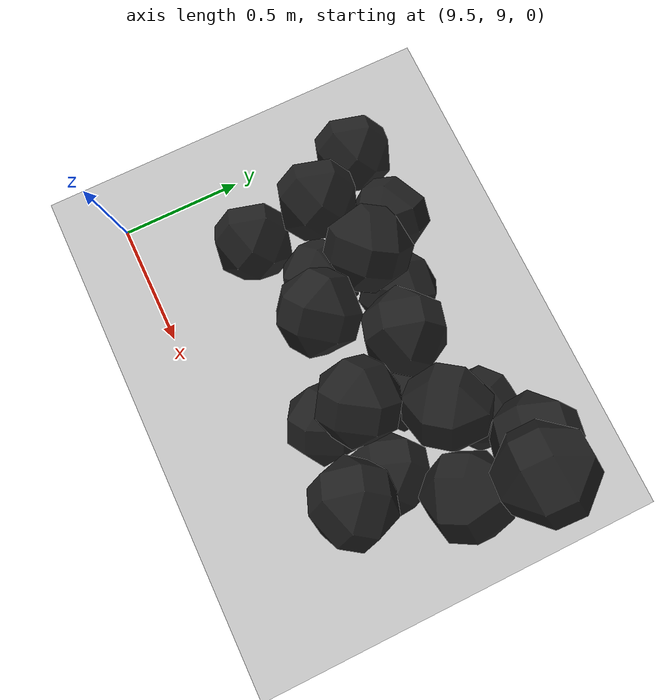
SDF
<sdf version="1.7">
 <world name="default">
  <model name="ground_plane">
   <static>1</static>
   <link name="link">
    <collision name="collision">
     <geometry><plane><normal>0 0 1</normal><size>100 100</size></plane></geometry>
     <surface><friction><ode><mu>100</mu><mu2>50</mu2></ode></friction></surface>
    </collision>
    <visual name="visual">
     <cast_shadows>0</cast_shadows>
     <geometry><plane><normal>0 0 1</normal><size>100 100</size></plane></geometry>
     <material>
      <script><uri>file://media/materials/scripts/gazebo.material</uri><name>Gazebo/Grey</name></script>
     </material>
    </visual>
   </link>
  </model>
  <model name="haoduomiantiaa_3">
   <link name="link_0">
    <inertial>
     <mass>0.2</mass>
     <inertia>
      <ixx>0.166667</ixx>
      <ixy>0</ixy>
      <ixz>0</ixz>
      <iyy>0.166667</iyy>
      <iyz>0</iyz>
      <izz>0.166667</izz>
     </inertia>
    </inertial>
    <visual name="visual">
     <geometry>
      <mesh>
       <uri>/home/lihaoyang/catkin_ws/src/pudong_gazebo/world/stl/haoduomianti.stl</uri>
       <scale>1 1 1</scale>
      </mesh>
     </geometry>
     <material>
      <lighting>1</lighting>
      <script><uri>file://media/materials/scripts/gazebo.material</uri><name>Gazebo/Black</name></script>
      <shader type="pixel"><normal_map>__default__</normal_map></shader>
      <ambient>0.3 0.3 0.3 1</ambient>
      <diffuse>0.7 0.7 0.7 1</diffuse>
      <specular>0.01 0.01 0.01 1</specular>
      <emissive>0 0 0 1</emissive>
     </material>
    </visual>
    <collision name="collision">
     <geometry>
      <mesh>
       <uri>/home/lihaoyang/catkin_ws/src/pudong_gazebo/world/stl/haoduomianti.stl</uri>
       <scale>1 1 1</scale>
      </mesh>
     </geometry>
     <surface>
      <friction>
       <ode><mu>1</mu><mu2>1</mu2><fdir1>0 0 0</fdir1><slip1>0</slip1><slip2>0</slip2></ode>
       <torsional>
        <coefficient>1</coefficient>
        <patch_radius>0</patch_radius>
        <surface_radius>0</surface_radius>
        <use_patch_radius>1</use_patch_radius>
        <ode><slip>0</slip></ode>
       </torsional>
      </friction>
      <bounce><restitution_coefficient>0</restitution_coefficient><threshold>1e+06</threshold></bounce>
      <contact>
       <collide_without_contact>0</collide_without_contact>
       <collide_without_contact_bitmask>1</collide_without_contact_bitmask>
       <collide_bitmask>1</collide_bitmask>
       <ode>
        <soft_cfm>0</soft_cfm>
        <soft_erp>0.2</soft_erp>
        <kp>1e+13</kp>
        <kd>1</kd>
        <max_vel>0.01</max_vel>
        <min_depth>0</min_depth>
       </ode>
       <bullet>
        <split_impulse>1</split_impulse>
        <split_impulse_penetration_threshold>-0.01</split_impulse_penetration_threshold>
        <soft_cfm>0</soft_cfm>
        <soft_erp>0.2</soft_erp>
        <kp>1e+13</kp>
        <kd>1</kd>
       </bullet>
      </contact>
     </surface>
    </collision>
   </link>
   <static>0</static>
   <pose>10.3504 9.84955 0.129678 0.425469 -0.641016 -2.14379</pose>
  </model>
  <model name="haoduomiantiaa_24">
   <link name="link_0">
    <inertial>
     <mass>0.2</mass>
     <inertia>
      <ixx>0.166667</ixx>
      <ixy>0</ixy>
      <ixz>0</ixz>
      <iyy>0.166667</iyy>
      <iyz>0</iyz>
      <izz>0.166667</izz>
     </inertia>
    </inertial>
    <visual name="visual">
     <geometry>
      <mesh>
       <uri>/home/lihaoyang/catkin_ws/src/pudong_gazebo/world/stl/haoduomianti.stl</uri>
       <scale>1 1 1</scale>
      </mesh>
     </geometry>
     <material>
      <lighting>1</lighting>
      <script><uri>file://media/materials/scripts/gazebo.material</uri><name>Gazebo/Black</name></script>
      <shader type="pixel"><normal_map>__default__</normal_map></shader>
      <ambient>0.3 0.3 0.3 1</ambient>
      <diffuse>0.7 0.7 0.7 1</diffuse>
      <specular>0.01 0.01 0.01 1</specular>
      <emissive>0 0 0 1</emissive>
     </material>
    </visual>
    <collision name="collision">
     <geometry>
      <mesh>
       <uri>/home/lihaoyang/catkin_ws/src/pudong_gazebo/world/stl/haoduomianti.stl</uri>
       <scale>1 1 1</scale>
      </mesh>
     </geometry>
     <surface>
      <friction>
       <ode><mu>1</mu><mu2>1</mu2><fdir1>0 0 0</fdir1><slip1>0</slip1><slip2>0</slip2></ode>
       <torsional>
        <coefficient>1</coefficient>
        <patch_radius>0</patch_radius>
        <surface_radius>0</surface_radius>
        <use_patch_radius>1</use_patch_radius>
        <ode><slip>0</slip></ode>
       </torsional>
      </friction>
      <bounce><restitution_coefficient>0</restitution_coefficient><threshold>1e+06</threshold></bounce>
      <contact>
       <collide_without_contact>0</collide_without_contact>
       <collide_without_contact_bitmask>1</collide_without_contact_bitmask>
       <collide_bitmask>1</collide_bitmask>
       <ode>
        <soft_cfm>0</soft_cfm>
        <soft_erp>0.2</soft_erp>
        <kp>1e+13</kp>
        <kd>1</kd>
        <max_vel>0.01</max_vel>
        <min_depth>0</min_depth>
       </ode>
       <bullet>
        <split_impulse>1</split_impulse>
        <split_impulse_penetration_threshold>-0.01</split_impulse_penetration_threshold>
        <soft_cfm>0</soft_cfm>
        <soft_erp>0.2</soft_erp>
        <kp>1e+13</kp>
        <kd>1</kd>
       </bullet>
      </contact>
     </surface>
    </collision>
   </link>
   <static>0</static>
   <pose>10.9189 10.0612 0.142592 0.867457 -0.695063 1.70871</pose>
  </model>
  <model name="haoduomiantiaa_34">
   <link name="link_0">
    <inertial>
     <mass>0.2</mass>
     <inertia>
      <ixx>0.166667</ixx>
      <ixy>0</ixy>
      <ixz>0</ixz>
      <iyy>0.166667</iyy>
      <iyz>0</iyz>
      <izz>0.166667</izz>
     </inertia>
    </inertial>
    <visual name="visual">
     <geometry>
      <mesh>
       <uri>/home/lihaoyang/catkin_ws/src/pudong_gazebo/world/stl/haoduomianti.stl</uri>
       <scale>1 1 1</scale>
      </mesh>
     </geometry>
     <material>
      <lighting>1</lighting>
      <script><uri>file://media/materials/scripts/gazebo.material</uri><name>Gazebo/Black</name></script>
      <shader type="pixel"><normal_map>__default__</normal_map></shader>
      <ambient>0.3 0.3 0.3 1</ambient>
      <diffuse>0.7 0.7 0.7 1</diffuse>
      <specular>0.01 0.01 0.01 1</specular>
      <emissive>0 0 0 1</emissive>
     </material>
    </visual>
    <collision name="collision">
     <geometry>
      <mesh>
       <uri>/home/lihaoyang/catkin_ws/src/pudong_gazebo/world/stl/haoduomianti.stl</uri>
       <scale>1 1 1</scale>
      </mesh>
     </geometry>
     <surface>
      <friction>
       <ode><mu>1</mu><mu2>1</mu2><fdir1>0 0 0</fdir1><slip1>0</slip1><slip2>0</slip2></ode>
       <torsional>
        <coefficient>1</coefficient>
        <patch_radius>0</patch_radius>
        <surface_radius>0</surface_radius>
        <use_patch_radius>1</use_patch_radius>
        <ode><slip>0</slip></ode>
       </torsional>
      </friction>
      <bounce><restitution_coefficient>0</restitution_coefficient><threshold>1e+06</threshold></bounce>
      <contact>
       <collide_without_contact>0</collide_without_contact>
       <collide_without_contact_bitmask>1</collide_without_contact_bitmask>
       <collide_bitmask>1</collide_bitmask>
       <ode>
        <soft_cfm>0</soft_cfm>
        <soft_erp>0.2</soft_erp>
        <kp>1e+13</kp>
        <kd>1</kd>
        <max_vel>0.01</max_vel>
        <min_depth>0</min_depth>
       </ode>
       <bullet>
        <split_impulse>1</split_impulse>
        <split_impulse_penetration_threshold>-0.01</split_impulse_penetration_threshold>
        <soft_cfm>0</soft_cfm>
        <soft_erp>0.2</soft_erp>
        <kp>1e+13</kp>
        <kd>1</kd>
       </bullet>
      </contact>
     </surface>
    </collision>
   </link>
   <static>0</static>
   <pose>10.6131 9.75065 -0.109493 0.925221 -0.673977 -0.450165</pose>
  </model>
  <model name="haoduomiantiaa_37">
   <link name="link_0">
    <inertial>
     <mass>0.2</mass>
     <inertia>
      <ixx>0.166667</ixx>
      <ixy>0</ixy>
      <ixz>0</ixz>
      <iyy>0.166667</iyy>
      <iyz>0</iyz>
      <izz>0.166667</izz>
     </inertia>
    </inertial>
    <visual name="visual">
     <geometry>
      <mesh>
       <uri>/home/lihaoyang/catkin_ws/src/pudong_gazebo/world/stl/haoduomianti.stl</uri>
       <scale>1 1 1</scale>
      </mesh>
     </geometry>
     <material>
      <lighting>1</lighting>
      <script><uri>file://media/materials/scripts/gazebo.material</uri><name>Gazebo/Black</name></script>
      <shader type="pixel"><normal_map>__default__</normal_map></shader>
      <ambient>0.3 0.3 0.3 1</ambient>
      <diffuse>0.7 0.7 0.7 1</diffuse>
      <specular>0.01 0.01 0.01 1</specular>
      <emissive>0 0 0 1</emissive>
     </material>
    </visual>
    <collision name="collision">
     <geometry>
      <mesh>
       <uri>/home/lihaoyang/catkin_ws/src/pudong_gazebo/world/stl/haoduomianti.stl</uri>
       <scale>1 1 1</scale>
      </mesh>
     </geometry>
     <surface>
      <friction>
       <ode><mu>1</mu><mu2>1</mu2><fdir1>0 0 0</fdir1><slip1>0</slip1><slip2>0</slip2></ode>
       <torsional>
        <coefficient>1</coefficient>
        <patch_radius>0</patch_radius>
        <surface_radius>0</surface_radius>
        <use_patch_radius>1</use_patch_radius>
        <ode><slip>0</slip></ode>
       </torsional>
      </friction>
      <bounce><restitution_coefficient>0</restitution_coefficient><threshold>1e+06</threshold></bounce>
      <contact>
       <collide_without_contact>0</collide_without_contact>
       <collide_without_contact_bitmask>1</collide_without_contact_bitmask>
       <collide_bitmask>1</collide_bitmask>
       <ode>
        <soft_cfm>0</soft_cfm>
        <soft_erp>0.2</soft_erp>
        <kp>1e+13</kp>
        <kd>1</kd>
        <max_vel>0.01</max_vel>
        <min_depth>0</min_depth>
       </ode>
       <bullet>
        <split_impulse>1</split_impulse>
        <split_impulse_penetration_threshold>-0.01</split_impulse_penetration_threshold>
        <soft_cfm>0</soft_cfm>
        <soft_erp>0.2</soft_erp>
        <kp>1e+13</kp>
        <kd>1</kd>
       </bullet>
      </contact>
     </surface>
    </collision>
   </link>
   <static>0</static>
   <pose>9.65128 9.97883 -0.115407 0.784264 -0.615368 1.83545</pose>
  </model>
  <model name="haoduomiantiaa_42">
   <link name="link_0">
    <inertial>
     <mass>0.2</mass>
     <inertia>
      <ixx>0.166667</ixx>
      <ixy>0</ixy>
      <ixz>0</ixz>
      <iyy>0.166667</iyy>
      <iyz>0</iyz>
      <izz>0.166667</izz>
     </inertia>
    </inertial>
    <visual name="visual">
     <geometry>
      <mesh>
       <uri>/home/lihaoyang/catkin_ws/src/pudong_gazebo/world/stl/haoduomianti.stl</uri>
       <scale>1 1 1</scale>
      </mesh>
     </geometry>
     <material>
      <lighting>1</lighting>
      <script><uri>file://media/materials/scripts/gazebo.material</uri><name>Gazebo/Black</name></script>
      <shader type="pixel"><normal_map>__default__</normal_map></shader>
      <ambient>0.3 0.3 0.3 1</ambient>
      <diffuse>0.7 0.7 0.7 1</diffuse>
      <specular>0.01 0.01 0.01 1</specular>
      <emissive>0 0 0 1</emissive>
     </material>
    </visual>
    <collision name="collision">
     <geometry>
      <mesh>
       <uri>/home/lihaoyang/catkin_ws/src/pudong_gazebo/world/stl/haoduomianti.stl</uri>
       <scale>1 1 1</scale>
      </mesh>
     </geometry>
     <surface>
      <friction>
       <ode><mu>1</mu><mu2>1</mu2><fdir1>0 0 0</fdir1><slip1>0</slip1><slip2>0</slip2></ode>
       <torsional>
        <coefficient>1</coefficient>
        <patch_radius>0</patch_radius>
        <surface_radius>0</surface_radius>
        <use_patch_radius>1</use_patch_radius>
        <ode><slip>0</slip></ode>
       </torsional>
      </friction>
      <bounce><restitution_coefficient>0</restitution_coefficient><threshold>1e+06</threshold></bounce>
      <contact>
       <collide_without_contact>0</collide_without_contact>
       <collide_without_contact_bitmask>1</collide_without_contact_bitmask>
       <collide_bitmask>1</collide_bitmask>
       <ode>
        <soft_cfm>0</soft_cfm>
        <soft_erp>0.2</soft_erp>
        <kp>1e+13</kp>
        <kd>1</kd>
        <max_vel>0.01</max_vel>
        <min_depth>0</min_depth>
       </ode>
       <bullet>
        <split_impulse>1</split_impulse>
        <split_impulse_penetration_threshold>-0.01</split_impulse_penetration_threshold>
        <soft_cfm>0</soft_cfm>
        <soft_erp>0.2</soft_erp>
        <kp>1e+13</kp>
        <kd>1</kd>
       </bullet>
      </contact>
     </surface>
    </collision>
   </link>
   <static>0</static>
   <pose>9.95244 9.99674 -0.115051 0.786641 -0.61753 0.973954</pose>
  </model>
  <model name="haoduomiantiaa_68">
   <link name="link_0">
    <inertial>
     <mass>0.2</mass>
     <inertia>
      <ixx>0.166667</ixx>
      <ixy>0</ixy>
      <ixz>0</ixz>
      <iyy>0.166667</iyy>
      <iyz>0</iyz>
      <izz>0.166667</izz>
     </inertia>
    </inertial>
    <visual name="visual">
     <geometry>
      <mesh>
       <uri>/home/lihaoyang/catkin_ws/src/pudong_gazebo/world/stl/haoduomianti.stl</uri>
       <scale>1 1 1</scale>
      </mesh>
     </geometry>
     <material>
      <lighting>1</lighting>
      <script><uri>file://media/materials/scripts/gazebo.material</uri><name>Gazebo/Black</name></script>
      <shader type="pixel"><normal_map>__default__</normal_map></shader>
      <ambient>0.3 0.3 0.3 1</ambient>
      <diffuse>0.7 0.7 0.7 1</diffuse>
      <specular>0.01 0.01 0.01 1</specular>
      <emissive>0 0 0 1</emissive>
     </material>
    </visual>
    <collision name="collision">
     <geometry>
      <mesh>
       <uri>/home/lihaoyang/catkin_ws/src/pudong_gazebo/world/stl/haoduomianti.stl</uri>
       <scale>1 1 1</scale>
      </mesh>
     </geometry>
     <surface>
      <friction>
       <ode><mu>1</mu><mu2>1</mu2><fdir1>0 0 0</fdir1><slip1>0</slip1><slip2>0</slip2></ode>
       <torsional>
        <coefficient>1</coefficient>
        <patch_radius>0</patch_radius>
        <surface_radius>0</surface_radius>
        <use_patch_radius>1</use_patch_radius>
        <ode><slip>0</slip></ode>
       </torsional>
      </friction>
      <bounce><restitution_coefficient>0</restitution_coefficient><threshold>1e+06</threshold></bounce>
      <contact>
       <collide_without_contact>0</collide_without_contact>
       <collide_without_contact_bitmask>1</collide_without_contact_bitmask>
       <collide_bitmask>1</collide_bitmask>
       <ode>
        <soft_cfm>0</soft_cfm>
        <soft_erp>0.2</soft_erp>
        <kp>1e+13</kp>
        <kd>1</kd>
        <max_vel>0.01</max_vel>
        <min_depth>0</min_depth>
       </ode>
       <bullet>
        <split_impulse>1</split_impulse>
        <split_impulse_penetration_threshold>-0.01</split_impulse_penetration_threshold>
        <soft_cfm>0</soft_cfm>
        <soft_erp>0.2</soft_erp>
        <kp>1e+13</kp>
        <kd>1</kd>
       </bullet>
      </contact>
     </surface>
    </collision>
   </link>
   <static>0</static>
   <pose>10.9958 9.73965 0.179232 0.749472 -0.609533 -0.892031</pose>
  </model>
  <model name="haoduomiantiaa_69">
   <link name="link_0">
    <inertial>
     <mass>0.2</mass>
     <inertia>
      <ixx>0.166667</ixx>
      <ixy>0</ixy>
      <ixz>0</ixz>
      <iyy>0.166667</iyy>
      <iyz>0</iyz>
      <izz>0.166667</izz>
     </inertia>
    </inertial>
    <visual name="visual">
     <geometry>
      <mesh>
       <uri>/home/lihaoyang/catkin_ws/src/pudong_gazebo/world/stl/haoduomianti.stl</uri>
       <scale>1 1 1</scale>
      </mesh>
     </geometry>
     <material>
      <lighting>1</lighting>
      <script><uri>file://media/materials/scripts/gazebo.material</uri><name>Gazebo/Black</name></script>
      <shader type="pixel"><normal_map>__default__</normal_map></shader>
      <ambient>0.3 0.3 0.3 1</ambient>
      <diffuse>0.7 0.7 0.7 1</diffuse>
      <specular>0.01 0.01 0.01 1</specular>
      <emissive>0 0 0 1</emissive>
     </material>
    </visual>
    <collision name="collision">
     <geometry>
      <mesh>
       <uri>/home/lihaoyang/catkin_ws/src/pudong_gazebo/world/stl/haoduomianti.stl</uri>
       <scale>1 1 1</scale>
      </mesh>
     </geometry>
     <surface>
      <friction>
       <ode><mu>1</mu><mu2>1</mu2><fdir1>0 0 0</fdir1><slip1>0</slip1><slip2>0</slip2></ode>
       <torsional>
        <coefficient>1</coefficient>
        <patch_radius>0</patch_radius>
        <surface_radius>0</surface_radius>
        <use_patch_radius>1</use_patch_radius>
        <ode><slip>0</slip></ode>
       </torsional>
      </friction>
      <bounce><restitution_coefficient>0</restitution_coefficient><threshold>1e+06</threshold></bounce>
      <contact>
       <collide_without_contact>0</collide_without_contact>
       <collide_without_contact_bitmask>1</collide_without_contact_bitmask>
       <collide_bitmask>1</collide_bitmask>
       <ode>
        <soft_cfm>0</soft_cfm>
        <soft_erp>0.2</soft_erp>
        <kp>1e+13</kp>
        <kd>1</kd>
        <max_vel>0.01</max_vel>
        <min_depth>0</min_depth>
       </ode>
       <bullet>
        <split_impulse>1</split_impulse>
        <split_impulse_penetration_threshold>-0.01</split_impulse_penetration_threshold>
        <soft_cfm>0</soft_cfm>
        <soft_erp>0.2</soft_erp>
        <kp>1e+13</kp>
        <kd>1</kd>
       </bullet>
      </contact>
     </surface>
    </collision>
   </link>
   <static>0</static>
   <pose>10.1433 9.87198 0.13513 0.918311 -0.360982 -2.0153</pose>
  </model>
  <model name="haoduomiantiaa_70">
   <link name="link_0">
    <inertial>
     <mass>0.2</mass>
     <inertia>
      <ixx>0.166667</ixx>
      <ixy>0</ixy>
      <ixz>0</ixz>
      <iyy>0.166667</iyy>
      <iyz>0</iyz>
      <izz>0.166667</izz>
     </inertia>
    </inertial>
    <visual name="visual">
     <geometry>
      <mesh>
       <uri>/home/lihaoyang/catkin_ws/src/pudong_gazebo/world/stl/haoduomianti.stl</uri>
       <scale>1 1 1</scale>
      </mesh>
     </geometry>
     <material>
      <lighting>1</lighting>
      <script><uri>file://media/materials/scripts/gazebo.material</uri><name>Gazebo/Black</name></script>
      <shader type="pixel"><normal_map>__default__</normal_map></shader>
      <ambient>0.3 0.3 0.3 1</ambient>
      <diffuse>0.7 0.7 0.7 1</diffuse>
      <specular>0.01 0.01 0.01 1</specular>
      <emissive>0 0 0 1</emissive>
     </material>
    </visual>
    <collision name="collision">
     <geometry>
      <mesh>
       <uri>/home/lihaoyang/catkin_ws/src/pudong_gazebo/world/stl/haoduomianti.stl</uri>
       <scale>1 1 1</scale>
      </mesh>
     </geometry>
     <surface>
      <friction>
       <ode><mu>1</mu><mu2>1</mu2><fdir1>0 0 0</fdir1><slip1>0</slip1><slip2>0</slip2></ode>
       <torsional>
        <coefficient>1</coefficient>
        <patch_radius>0</patch_radius>
        <surface_radius>0</surface_radius>
        <use_patch_radius>1</use_patch_radius>
        <ode><slip>0</slip></ode>
       </torsional>
      </friction>
      <bounce><restitution_coefficient>0</restitution_coefficient><threshold>1e+06</threshold></bounce>
      <contact>
       <collide_without_contact>0</collide_without_contact>
       <collide_without_contact_bitmask>1</collide_without_contact_bitmask>
       <collide_bitmask>1</collide_bitmask>
       <ode>
        <soft_cfm>0</soft_cfm>
        <soft_erp>0.2</soft_erp>
        <kp>1e+13</kp>
        <kd>1</kd>
        <max_vel>0.01</max_vel>
        <min_depth>0</min_depth>
       </ode>
       <bullet>
        <split_impulse>1</split_impulse>
        <split_impulse_penetration_threshold>-0.01</split_impulse_penetration_threshold>
        <soft_cfm>0</soft_cfm>
        <soft_erp>0.2</soft_erp>
        <kp>1e+13</kp>
        <kd>1</kd>
       </bullet>
      </contact>
     </surface>
    </collision>
   </link>
   <static>0</static>
   <pose>10.5907 9.52528 0.145953 0.621742 -0.648387 0.575842</pose>
  </model>
  <model name="haoduomiantiaa_72">
   <link name="link_0">
    <inertial>
     <mass>0.2</mass>
     <inertia>
      <ixx>0.166667</ixx>
      <ixy>0</ixy>
      <ixz>0</ixz>
      <iyy>0.166667</iyy>
      <iyz>0</iyz>
      <izz>0.166667</izz>
     </inertia>
    </inertial>
    <visual name="visual">
     <geometry>
      <mesh>
       <uri>/home/lihaoyang/catkin_ws/src/pudong_gazebo/world/stl/haoduomianti.stl</uri>
       <scale>1 1 1</scale>
      </mesh>
     </geometry>
     <material>
      <lighting>1</lighting>
      <script><uri>file://media/materials/scripts/gazebo.material</uri><name>Gazebo/Black</name></script>
      <shader type="pixel"><normal_map>__default__</normal_map></shader>
      <ambient>0.3 0.3 0.3 1</ambient>
      <diffuse>0.7 0.7 0.7 1</diffuse>
      <specular>0.01 0.01 0.01 1</specular>
      <emissive>0 0 0 1</emissive>
     </material>
    </visual>
    <collision name="collision">
     <geometry>
      <mesh>
       <uri>/home/lihaoyang/catkin_ws/src/pudong_gazebo/world/stl/haoduomianti.stl</uri>
       <scale>1 1 1</scale>
      </mesh>
     </geometry>
     <surface>
      <friction>
       <ode><mu>1</mu><mu2>1</mu2><fdir1>0 0 0</fdir1><slip1>0</slip1><slip2>0</slip2></ode>
       <torsional>
        <coefficient>1</coefficient>
        <patch_radius>0</patch_radius>
        <surface_radius>0</surface_radius>
        <use_patch_radius>1</use_patch_radius>
        <ode><slip>0</slip></ode>
       </torsional>
      </friction>
      <bounce><restitution_coefficient>0</restitution_coefficient><threshold>1e+06</threshold></bounce>
      <contact>
       <collide_without_contact>0</collide_without_contact>
       <collide_without_contact_bitmask>1</collide_without_contact_bitmask>
       <collide_bitmask>1</collide_bitmask>
       <ode>
        <soft_cfm>0</soft_cfm>
        <soft_erp>0.2</soft_erp>
        <kp>1e+13</kp>
        <kd>1</kd>
        <max_vel>0.01</max_vel>
        <min_depth>0</min_depth>
       </ode>
       <bullet>
        <split_impulse>1</split_impulse>
        <split_impulse_penetration_threshold>-0.01</split_impulse_penetration_threshold>
        <soft_cfm>0</soft_cfm>
        <soft_erp>0.2</soft_erp>
        <kp>1e+13</kp>
        <kd>1</kd>
       </bullet>
      </contact>
     </surface>
    </collision>
   </link>
   <static>0</static>
   <pose>9.81293 9.73438 0.013283 0.782444 -0.551953 1.84415</pose>
  </model>
  <model name="haoduomiantiaa_73">
   <link name="link_0">
    <inertial>
     <mass>0.2</mass>
     <inertia>
      <ixx>0.166667</ixx>
      <ixy>0</ixy>
      <ixz>0</ixz>
      <iyy>0.166667</iyy>
      <iyz>0</iyz>
      <izz>0.166667</izz>
     </inertia>
    </inertial>
    <visual name="visual">
     <geometry>
      <mesh>
       <uri>/home/lihaoyang/catkin_ws/src/pudong_gazebo/world/stl/haoduomianti.stl</uri>
       <scale>1 1 1</scale>
      </mesh>
     </geometry>
     <material>
      <lighting>1</lighting>
      <script><uri>file://media/materials/scripts/gazebo.material</uri><name>Gazebo/Black</name></script>
      <shader type="pixel"><normal_map>__default__</normal_map></shader>
      <ambient>0.3 0.3 0.3 1</ambient>
      <diffuse>0.7 0.7 0.7 1</diffuse>
      <specular>0.01 0.01 0.01 1</specular>
      <emissive>0 0 0 1</emissive>
     </material>
    </visual>
    <collision name="collision">
     <geometry>
      <mesh>
       <uri>/home/lihaoyang/catkin_ws/src/pudong_gazebo/world/stl/haoduomianti.stl</uri>
       <scale>1 1 1</scale>
      </mesh>
     </geometry>
     <surface>
      <friction>
       <ode><mu>1</mu><mu2>1</mu2><fdir1>0 0 0</fdir1><slip1>0</slip1><slip2>0</slip2></ode>
       <torsional>
        <coefficient>1</coefficient>
        <patch_radius>0</patch_radius>
        <surface_radius>0</surface_radius>
        <use_patch_radius>1</use_patch_radius>
        <ode><slip>0</slip></ode>
       </torsional>
      </friction>
      <bounce><restitution_coefficient>0</restitution_coefficient><threshold>1e+06</threshold></bounce>
      <contact>
       <collide_without_contact>0</collide_without_contact>
       <collide_without_contact_bitmask>1</collide_without_contact_bitmask>
       <collide_bitmask>1</collide_bitmask>
       <ode>
        <soft_cfm>0</soft_cfm>
        <soft_erp>0.2</soft_erp>
        <kp>1e+13</kp>
        <kd>1</kd>
        <max_vel>0.01</max_vel>
        <min_depth>0</min_depth>
       </ode>
       <bullet>
        <split_impulse>1</split_impulse>
        <split_impulse_penetration_threshold>-0.01</split_impulse_penetration_threshold>
        <soft_cfm>0</soft_cfm>
        <soft_erp>0.2</soft_erp>
        <kp>1e+13</kp>
        <kd>1</kd>
       </bullet>
      </contact>
     </surface>
    </collision>
   </link>
   <static>0</static>
   <pose>10.0662 9.63802 -0.115669 0.785381 -0.612157 2.80376</pose>
  </model>
  <model name="haoduomiantiaa_81">
   <link name="link_0">
    <inertial>
     <mass>0.2</mass>
     <inertia>
      <ixx>0.166667</ixx>
      <ixy>0</ixy>
      <ixz>0</ixz>
      <iyy>0.166667</iyy>
      <iyz>0</iyz>
      <izz>0.166667</izz>
     </inertia>
    </inertial>
    <visual name="visual">
     <geometry>
      <mesh>
       <uri>/home/lihaoyang/catkin_ws/src/pudong_gazebo/world/stl/haoduomianti.stl</uri>
       <scale>1 1 1</scale>
      </mesh>
     </geometry>
     <material>
      <lighting>1</lighting>
      <script><uri>file://media/materials/scripts/gazebo.material</uri><name>Gazebo/Black</name></script>
      <shader type="pixel"><normal_map>__default__</normal_map></shader>
      <ambient>0.3 0.3 0.3 1</ambient>
      <diffuse>0.7 0.7 0.7 1</diffuse>
      <specular>0.01 0.01 0.01 1</specular>
      <emissive>0 0 0 1</emissive>
     </material>
    </visual>
    <collision name="collision">
     <geometry>
      <mesh>
       <uri>/home/lihaoyang/catkin_ws/src/pudong_gazebo/world/stl/haoduomianti.stl</uri>
       <scale>1 1 1</scale>
      </mesh>
     </geometry>
     <surface>
      <friction>
       <ode><mu>1</mu><mu2>1</mu2><fdir1>0 0 0</fdir1><slip1>0</slip1><slip2>0</slip2></ode>
       <torsional>
        <coefficient>1</coefficient>
        <patch_radius>0</patch_radius>
        <surface_radius>0</surface_radius>
        <use_patch_radius>1</use_patch_radius>
        <ode><slip>0</slip></ode>
       </torsional>
      </friction>
      <bounce><restitution_coefficient>0</restitution_coefficient><threshold>1e+06</threshold></bounce>
      <contact>
       <collide_without_contact>0</collide_without_contact>
       <collide_without_contact_bitmask>1</collide_without_contact_bitmask>
       <collide_bitmask>1</collide_bitmask>
       <ode>
        <soft_cfm>0</soft_cfm>
        <soft_erp>0.2</soft_erp>
        <kp>1e+13</kp>
        <kd>1</kd>
        <max_vel>0.01</max_vel>
        <min_depth>0</min_depth>
       </ode>
       <bullet>
        <split_impulse>1</split_impulse>
        <split_impulse_penetration_threshold>-0.01</split_impulse_penetration_threshold>
        <soft_cfm>0</soft_cfm>
        <soft_erp>0.2</soft_erp>
        <kp>1e+13</kp>
        <kd>1</kd>
       </bullet>
      </contact>
     </surface>
    </collision>
   </link>
   <static>0</static>
   <pose>10.6626 9.76189 0.153733 0.410725 -0.698739 -0.914516</pose>
  </model>
  <model name="haoduomiantiaa_82">
   <link name="link_0">
    <inertial>
     <mass>0.2</mass>
     <inertia>
      <ixx>0.166667</ixx>
      <ixy>0</ixy>
      <ixz>0</ixz>
      <iyy>0.166667</iyy>
      <iyz>0</iyz>
      <izz>0.166667</izz>
     </inertia>
    </inertial>
    <visual name="visual">
     <geometry>
      <mesh>
       <uri>/home/lihaoyang/catkin_ws/src/pudong_gazebo/world/stl/haoduomianti.stl</uri>
       <scale>1 1 1</scale>
      </mesh>
     </geometry>
     <material>
      <lighting>1</lighting>
      <script><uri>file://media/materials/scripts/gazebo.material</uri><name>Gazebo/Black</name></script>
      <shader type="pixel"><normal_map>__default__</normal_map></shader>
      <ambient>0.3 0.3 0.3 1</ambient>
      <diffuse>0.7 0.7 0.7 1</diffuse>
      <specular>0.01 0.01 0.01 1</specular>
      <emissive>0 0 0 1</emissive>
     </material>
    </visual>
    <collision name="collision">
     <geometry>
      <mesh>
       <uri>/home/lihaoyang/catkin_ws/src/pudong_gazebo/world/stl/haoduomianti.stl</uri>
       <scale>1 1 1</scale>
      </mesh>
     </geometry>
     <surface>
      <friction>
       <ode><mu>1</mu><mu2>1</mu2><fdir1>0 0 0</fdir1><slip1>0</slip1><slip2>0</slip2></ode>
       <torsional>
        <coefficient>1</coefficient>
        <patch_radius>0</patch_radius>
        <surface_radius>0</surface_radius>
        <use_patch_radius>1</use_patch_radius>
        <ode><slip>0</slip></ode>
       </torsional>
      </friction>
      <bounce><restitution_coefficient>0</restitution_coefficient><threshold>1e+06</threshold></bounce>
      <contact>
       <collide_without_contact>0</collide_without_contact>
       <collide_without_contact_bitmask>1</collide_without_contact_bitmask>
       <collide_bitmask>1</collide_bitmask>
       <ode>
        <soft_cfm>0</soft_cfm>
        <soft_erp>0.2</soft_erp>
        <kp>1e+13</kp>
        <kd>1</kd>
        <max_vel>0.01</max_vel>
        <min_depth>0</min_depth>
       </ode>
       <bullet>
        <split_impulse>1</split_impulse>
        <split_impulse_penetration_threshold>-0.01</split_impulse_penetration_threshold>
        <soft_cfm>0</soft_cfm>
        <soft_erp>0.2</soft_erp>
        <kp>1e+13</kp>
        <kd>1</kd>
       </bullet>
      </contact>
     </surface>
    </collision>
   </link>
   <static>0</static>
   <pose>10.8743 9.43536 0.125532 0.657804 -0.767919 1.97009</pose>
  </model>
  <model name="haoduomiantiaa_87">
   <link name="link_0">
    <inertial>
     <mass>0.2</mass>
     <inertia>
      <ixx>0.166667</ixx>
      <ixy>0</ixy>
      <ixz>0</ixz>
      <iyy>0.166667</iyy>
      <iyz>0</iyz>
      <izz>0.166667</izz>
     </inertia>
    </inertial>
    <visual name="visual">
     <geometry>
      <mesh>
       <uri>/home/lihaoyang/catkin_ws/src/pudong_gazebo/world/stl/haoduomianti.stl</uri>
       <scale>1 1 1</scale>
      </mesh>
     </geometry>
     <material>
      <lighting>1</lighting>
      <script><uri>file://media/materials/scripts/gazebo.material</uri><name>Gazebo/Black</name></script>
      <shader type="pixel"><normal_map>__default__</normal_map></shader>
      <ambient>0.3 0.3 0.3 1</ambient>
      <diffuse>0.7 0.7 0.7 1</diffuse>
      <specular>0.01 0.01 0.01 1</specular>
      <emissive>0 0 0 1</emissive>
     </material>
    </visual>
    <collision name="collision">
     <geometry>
      <mesh>
       <uri>/home/lihaoyang/catkin_ws/src/pudong_gazebo/world/stl/haoduomianti.stl</uri>
       <scale>1 1 1</scale>
      </mesh>
     </geometry>
     <surface>
      <friction>
       <ode><mu>1</mu><mu2>1</mu2><fdir1>0 0 0</fdir1><slip1>0</slip1><slip2>0</slip2></ode>
       <torsional>
        <coefficient>1</coefficient>
        <patch_radius>0</patch_radius>
        <surface_radius>0</surface_radius>
        <use_patch_radius>1</use_patch_radius>
        <ode><slip>0</slip></ode>
       </torsional>
      </friction>
      <bounce><restitution_coefficient>0</restitution_coefficient><threshold>1e+06</threshold></bounce>
      <contact>
       <collide_without_contact>0</collide_without_contact>
       <collide_without_contact_bitmask>1</collide_without_contact_bitmask>
       <collide_bitmask>1</collide_bitmask>
       <ode>
        <soft_cfm>0</soft_cfm>
        <soft_erp>0.2</soft_erp>
        <kp>1e+13</kp>
        <kd>1</kd>
        <max_vel>0.01</max_vel>
        <min_depth>0</min_depth>
       </ode>
       <bullet>
        <split_impulse>1</split_impulse>
        <split_impulse_penetration_threshold>-0.01</split_impulse_penetration_threshold>
        <soft_cfm>0</soft_cfm>
        <soft_erp>0.2</soft_erp>
        <kp>1e+13</kp>
        <kd>1</kd>
       </bullet>
      </contact>
     </surface>
    </collision>
   </link>
   <static>0</static>
   <pose>9.81277 9.46356 -0.11547 0.785614 -0.615563 -2.35785</pose>
  </model>
  <model name="haoduomiantiaa_90">
   <link name="link_0">
    <inertial>
     <mass>0.2</mass>
     <inertia>
      <ixx>0.166667</ixx>
      <ixy>0</ixy>
      <ixz>0</ixz>
      <iyy>0.166667</iyy>
      <iyz>0</iyz>
      <izz>0.166667</izz>
     </inertia>
    </inertial>
    <visual name="visual">
     <geometry>
      <mesh>
       <uri>/home/lihaoyang/catkin_ws/src/pudong_gazebo/world/stl/haoduomianti.stl</uri>
       <scale>1 1 1</scale>
      </mesh>
     </geometry>
     <material>
      <lighting>1</lighting>
      <script><uri>file://media/materials/scripts/gazebo.material</uri><name>Gazebo/Black</name></script>
      <shader type="pixel"><normal_map>__default__</normal_map></shader>
      <ambient>0.3 0.3 0.3 1</ambient>
      <diffuse>0.7 0.7 0.7 1</diffuse>
      <specular>0.01 0.01 0.01 1</specular>
      <emissive>0 0 0 1</emissive>
     </material>
    </visual>
    <collision name="collision">
     <geometry>
      <mesh>
       <uri>/home/lihaoyang/catkin_ws/src/pudong_gazebo/world/stl/haoduomianti.stl</uri>
       <scale>1 1 1</scale>
      </mesh>
     </geometry>
     <surface>
      <friction>
       <ode><mu>1</mu><mu2>1</mu2><fdir1>0 0 0</fdir1><slip1>0</slip1><slip2>0</slip2></ode>
       <torsional>
        <coefficient>1</coefficient>
        <patch_radius>0</patch_radius>
        <surface_radius>0</surface_radius>
        <use_patch_radius>1</use_patch_radius>
        <ode><slip>0</slip></ode>
       </torsional>
      </friction>
      <bounce><restitution_coefficient>0</restitution_coefficient><threshold>1e+06</threshold></bounce>
      <contact>
       <collide_without_contact>0</collide_without_contact>
       <collide_without_contact_bitmask>1</collide_without_contact_bitmask>
       <collide_bitmask>1</collide_bitmask>
       <ode>
        <soft_cfm>0</soft_cfm>
        <soft_erp>0.2</soft_erp>
        <kp>1e+13</kp>
        <kd>1</kd>
        <max_vel>0.01</max_vel>
        <min_depth>0</min_depth>
       </ode>
       <bullet>
        <split_impulse>1</split_impulse>
        <split_impulse_penetration_threshold>-0.01</split_impulse_penetration_threshold>
        <soft_cfm>0</soft_cfm>
        <soft_erp>0.2</soft_erp>
        <kp>1e+13</kp>
        <kd>1</kd>
       </bullet>
      </contact>
     </surface>
    </collision>
   </link>
   <static>0</static>
   <pose>10.8524 9.55399 -0.116996 0.78545 -0.614227 -2.43625</pose>
  </model>
  <model name="haoduomiantiaa_98">
   <link name="link_0">
    <inertial>
     <mass>0.2</mass>
     <inertia>
      <ixx>0.166667</ixx>
      <ixy>0</ixy>
      <ixz>0</ixz>
      <iyy>0.166667</iyy>
      <iyz>0</iyz>
      <izz>0.166667</izz>
     </inertia>
    </inertial>
    <visual name="visual">
     <geometry>
      <mesh>
       <uri>/home/lihaoyang/catkin_ws/src/pudong_gazebo/world/stl/haoduomianti.stl</uri>
       <scale>1 1 1</scale>
      </mesh>
     </geometry>
     <material>
      <lighting>1</lighting>
      <script><uri>file://media/materials/scripts/gazebo.material</uri><name>Gazebo/Black</name></script>
      <shader type="pixel"><normal_map>__default__</normal_map></shader>
      <ambient>0.3 0.3 0.3 1</ambient>
      <diffuse>0.7 0.7 0.7 1</diffuse>
      <specular>0.01 0.01 0.01 1</specular>
      <emissive>0 0 0 1</emissive>
     </material>
    </visual>
    <collision name="collision">
     <geometry>
      <mesh>
       <uri>/home/lihaoyang/catkin_ws/src/pudong_gazebo/world/stl/haoduomianti.stl</uri>
       <scale>1 1 1</scale>
      </mesh>
     </geometry>
     <surface>
      <friction>
       <ode><mu>1</mu><mu2>1</mu2><fdir1>0 0 0</fdir1><slip1>0</slip1><slip2>0</slip2></ode>
       <torsional>
        <coefficient>1</coefficient>
        <patch_radius>0</patch_radius>
        <surface_radius>0</surface_radius>
        <use_patch_radius>1</use_patch_radius>
        <ode><slip>0</slip></ode>
       </torsional>
      </friction>
      <bounce><restitution_coefficient>0</restitution_coefficient><threshold>1e+06</threshold></bounce>
      <contact>
       <collide_without_contact>0</collide_without_contact>
       <collide_without_contact_bitmask>1</collide_without_contact_bitmask>
       <collide_bitmask>1</collide_bitmask>
       <ode>
        <soft_cfm>0</soft_cfm>
        <soft_erp>0.2</soft_erp>
        <kp>1e+13</kp>
        <kd>1</kd>
        <max_vel>0.01</max_vel>
        <min_depth>0</min_depth>
       </ode>
       <bullet>
        <split_impulse>1</split_impulse>
        <split_impulse_penetration_threshold>-0.01</split_impulse_penetration_threshold>
        <soft_cfm>0</soft_cfm>
        <soft_erp>0.2</soft_erp>
        <kp>1e+13</kp>
        <kd>1</kd>
       </bullet>
      </contact>
     </surface>
    </collision>
   </link>
   <static>0</static>
   <pose>10.7537 9.94606 -0.108712 0.626547 -0.680843 -1.33999</pose>
  </model>
  <model name="haoduomiantiaa_100">
   <link name="link_0">
    <inertial>
     <mass>0.2</mass>
     <inertia>
      <ixx>0.166667</ixx>
      <ixy>0</ixy>
      <ixz>0</ixz>
      <iyy>0.166667</iyy>
      <iyz>0</iyz>
      <izz>0.166667</izz>
     </inertia>
    </inertial>
    <visual name="visual">
     <geometry>
      <mesh>
       <uri>/home/lihaoyang/catkin_ws/src/pudong_gazebo/world/stl/haoduomianti.stl</uri>
       <scale>1 1 1</scale>
      </mesh>
     </geometry>
     <material>
      <lighting>1</lighting>
      <script><uri>file://media/materials/scripts/gazebo.material</uri><name>Gazebo/Black</name></script>
      <shader type="pixel"><normal_map>__default__</normal_map></shader>
      <ambient>0.3 0.3 0.3 1</ambient>
      <diffuse>0.7 0.7 0.7 1</diffuse>
      <specular>0.01 0.01 0.01 1</specular>
      <emissive>0 0 0 1</emissive>
     </material>
    </visual>
    <collision name="collision">
     <geometry>
      <mesh>
       <uri>/home/lihaoyang/catkin_ws/src/pudong_gazebo/world/stl/haoduomianti.stl</uri>
       <scale>1 1 1</scale>
      </mesh>
     </geometry>
     <surface>
      <friction>
       <ode><mu>1</mu><mu2>1</mu2><fdir1>0 0 0</fdir1><slip1>0</slip1><slip2>0</slip2></ode>
       <torsional>
        <coefficient>1</coefficient>
        <patch_radius>0</patch_radius>
        <surface_radius>0</surface_radius>
        <use_patch_radius>1</use_patch_radius>
        <ode><slip>0</slip></ode>
       </torsional>
      </friction>
      <bounce><restitution_coefficient>0</restitution_coefficient><threshold>1e+06</threshold></bounce>
      <contact>
       <collide_without_contact>0</collide_without_contact>
       <collide_without_contact_bitmask>1</collide_without_contact_bitmask>
       <collide_bitmask>1</collide_bitmask>
       <ode>
        <soft_cfm>0</soft_cfm>
        <soft_erp>0.2</soft_erp>
        <kp>1e+13</kp>
        <kd>1</kd>
        <max_vel>0.01</max_vel>
        <min_depth>0</min_depth>
       </ode>
       <bullet>
        <split_impulse>1</split_impulse>
        <split_impulse_penetration_threshold>-0.01</split_impulse_penetration_threshold>
        <soft_cfm>0</soft_cfm>
        <soft_erp>0.2</soft_erp>
        <kp>1e+13</kp>
        <kd>1</kd>
       </bullet>
      </contact>
     </surface>
    </collision>
   </link>
   <static>0</static>
   <pose>10.5903 9.41193 -0.113461 0.785402 -0.569062 2.65726</pose>
  </model>
  <model name="haoduomiantiaa_110">
   <link name="link_0">
    <inertial>
     <mass>0.2</mass>
     <inertia>
      <ixx>0.166667</ixx>
      <ixy>0</ixy>
      <ixz>0</ixz>
      <iyy>0.166667</iyy>
      <iyz>0</iyz>
      <izz>0.166667</izz>
     </inertia>
    </inertial>
    <visual name="visual">
     <geometry>
      <mesh>
       <uri>/home/lihaoyang/catkin_ws/src/pudong_gazebo/world/stl/haoduomianti.stl</uri>
       <scale>1 1 1</scale>
      </mesh>
     </geometry>
     <material>
      <lighting>1</lighting>
      <script><uri>file://media/materials/scripts/gazebo.material</uri><name>Gazebo/Black</name></script>
      <shader type="pixel"><normal_map>__default__</normal_map></shader>
      <ambient>0.3 0.3 0.3 1</ambient>
      <diffuse>0.7 0.7 0.7 1</diffuse>
      <specular>0.01 0.01 0.01 1</specular>
      <emissive>0 0 0 1</emissive>
     </material>
    </visual>
    <collision name="collision">
     <geometry>
      <mesh>
       <uri>/home/lihaoyang/catkin_ws/src/pudong_gazebo/world/stl/haoduomianti.stl</uri>
       <scale>1 1 1</scale>
      </mesh>
     </geometry>
     <surface>
      <friction>
       <ode><mu>1</mu><mu2>1</mu2><fdir1>0 0 0</fdir1><slip1>0</slip1><slip2>0</slip2></ode>
       <torsional>
        <coefficient>1</coefficient>
        <patch_radius>0</patch_radius>
        <surface_radius>0</surface_radius>
        <use_patch_radius>1</use_patch_radius>
        <ode><slip>0</slip></ode>
       </torsional>
      </friction>
      <bounce><restitution_coefficient>0</restitution_coefficient><threshold>1e+06</threshold></bounce>
      <contact>
       <collide_without_contact>0</collide_without_contact>
       <collide_without_contact_bitmask>1</collide_without_contact_bitmask>
       <collide_bitmask>1</collide_bitmask>
       <ode>
        <soft_cfm>0</soft_cfm>
        <soft_erp>0.2</soft_erp>
        <kp>1e+13</kp>
        <kd>1</kd>
        <max_vel>0.01</max_vel>
        <min_depth>0</min_depth>
       </ode>
       <bullet>
        <split_impulse>1</split_impulse>
        <split_impulse_penetration_threshold>-0.01</split_impulse_penetration_threshold>
        <soft_cfm>0</soft_cfm>
        <soft_erp>0.2</soft_erp>
        <kp>1e+13</kp>
        <kd>1</kd>
       </bullet>
      </contact>
     </surface>
    </collision>
   </link>
   <static>0</static>
   <pose>10.2223 9.50165 0.142323 0.804509 -0.848032 -1.66404</pose>
  </model>
  <model name="haoduomiantiaa_125">
   <link name="link_0">
    <inertial>
     <mass>0.2</mass>
     <inertia>
      <ixx>0.166667</ixx>
      <ixy>0</ixy>
      <ixz>0</ixz>
      <iyy>0.166667</iyy>
      <iyz>0</iyz>
      <izz>0.166667</izz>
     </inertia>
    </inertial>
    <visual name="visual">
     <geometry>
      <mesh>
       <uri>/home/lihaoyang/catkin_ws/src/pudong_gazebo/world/stl/haoduomianti.stl</uri>
       <scale>1 1 1</scale>
      </mesh>
     </geometry>
     <material>
      <lighting>1</lighting>
      <script><uri>file://media/materials/scripts/gazebo.material</uri><name>Gazebo/Black</name></script>
      <shader type="pixel"><normal_map>__default__</normal_map></shader>
      <ambient>0.3 0.3 0.3 1</ambient>
      <diffuse>0.7 0.7 0.7 1</diffuse>
      <specular>0.01 0.01 0.01 1</specular>
      <emissive>0 0 0 1</emissive>
     </material>
    </visual>
    <collision name="collision">
     <geometry>
      <mesh>
       <uri>/home/lihaoyang/catkin_ws/src/pudong_gazebo/world/stl/haoduomianti.stl</uri>
       <scale>1 1 1</scale>
      </mesh>
     </geometry>
     <surface>
      <friction>
       <ode><mu>1</mu><mu2>1</mu2><fdir1>0 0 0</fdir1><slip1>0</slip1><slip2>0</slip2></ode>
       <torsional>
        <coefficient>1</coefficient>
        <patch_radius>0</patch_radius>
        <surface_radius>0</surface_radius>
        <use_patch_radius>1</use_patch_radius>
        <ode><slip>0</slip></ode>
       </torsional>
      </friction>
      <bounce><restitution_coefficient>0</restitution_coefficient><threshold>1e+06</threshold></bounce>
      <contact>
       <collide_without_contact>0</collide_without_contact>
       <collide_without_contact_bitmask>1</collide_without_contact_bitmask>
       <collide_bitmask>1</collide_bitmask>
       <ode>
        <soft_cfm>0</soft_cfm>
        <soft_erp>0.2</soft_erp>
        <kp>1e+13</kp>
        <kd>1</kd>
        <max_vel>0.01</max_vel>
        <min_depth>0</min_depth>
       </ode>
       <bullet>
        <split_impulse>1</split_impulse>
        <split_impulse_penetration_threshold>-0.01</split_impulse_penetration_threshold>
        <soft_cfm>0</soft_cfm>
        <soft_erp>0.2</soft_erp>
        <kp>1e+13</kp>
        <kd>1</kd>
       </bullet>
      </contact>
     </surface>
    </collision>
   </link>
   <static>0</static>
   <pose>10.2378 9.89417 -0.115863 0.785269 -0.615829 2.47522</pose>
  </model>
  <model name="haoduomiantiaa_126">
   <link name="link_0">
    <inertial>
     <mass>0.2</mass>
     <inertia>
      <ixx>0.166667</ixx>
      <ixy>0</ixy>
      <ixz>0</ixz>
      <iyy>0.166667</iyy>
      <iyz>0</iyz>
      <izz>0.166667</izz>
     </inertia>
    </inertial>
    <visual name="visual">
     <geometry>
      <mesh>
       <uri>/home/lihaoyang/catkin_ws/src/pudong_gazebo/world/stl/haoduomianti.stl</uri>
       <scale>1 1 1</scale>
      </mesh>
     </geometry>
     <material>
      <lighting>1</lighting>
      <script><uri>file://media/materials/scripts/gazebo.material</uri><name>Gazebo/Black</name></script>
      <shader type="pixel"><normal_map>__default__</normal_map></shader>
      <ambient>0.3 0.3 0.3 1</ambient>
      <diffuse>0.7 0.7 0.7 1</diffuse>
      <specular>0.01 0.01 0.01 1</specular>
      <emissive>0 0 0 1</emissive>
     </material>
    </visual>
    <collision name="collision">
     <geometry>
      <mesh>
       <uri>/home/lihaoyang/catkin_ws/src/pudong_gazebo/world/stl/haoduomianti.stl</uri>
       <scale>1 1 1</scale>
      </mesh>
     </geometry>
     <surface>
      <friction>
       <ode><mu>1</mu><mu2>1</mu2><fdir1>0 0 0</fdir1><slip1>0</slip1><slip2>0</slip2></ode>
       <torsional>
        <coefficient>1</coefficient>
        <patch_radius>0</patch_radius>
        <surface_radius>0</surface_radius>
        <use_patch_radius>1</use_patch_radius>
        <ode><slip>0</slip></ode>
       </torsional>
      </friction>
      <bounce><restitution_coefficient>0</restitution_coefficient><threshold>1e+06</threshold></bounce>
      <contact>
       <collide_without_contact>0</collide_without_contact>
       <collide_without_contact_bitmask>1</collide_without_contact_bitmask>
       <collide_bitmask>1</collide_bitmask>
       <ode>
        <soft_cfm>0</soft_cfm>
        <soft_erp>0.2</soft_erp>
        <kp>1e+13</kp>
        <kd>1</kd>
        <max_vel>0.01</max_vel>
        <min_depth>0</min_depth>
       </ode>
       <bullet>
        <split_impulse>1</split_impulse>
        <split_impulse_penetration_threshold>-0.01</split_impulse_penetration_threshold>
        <soft_cfm>0</soft_cfm>
        <soft_erp>0.2</soft_erp>
        <kp>1e+13</kp>
        <kd>1</kd>
       </bullet>
      </contact>
     </surface>
    </collision>
   </link>
   <static>0</static>
   <pose>10.9901 9.86869 0.428219 1.13132 -0.815267 -2.78198</pose>
  </model>
 </world>
</sdf>
